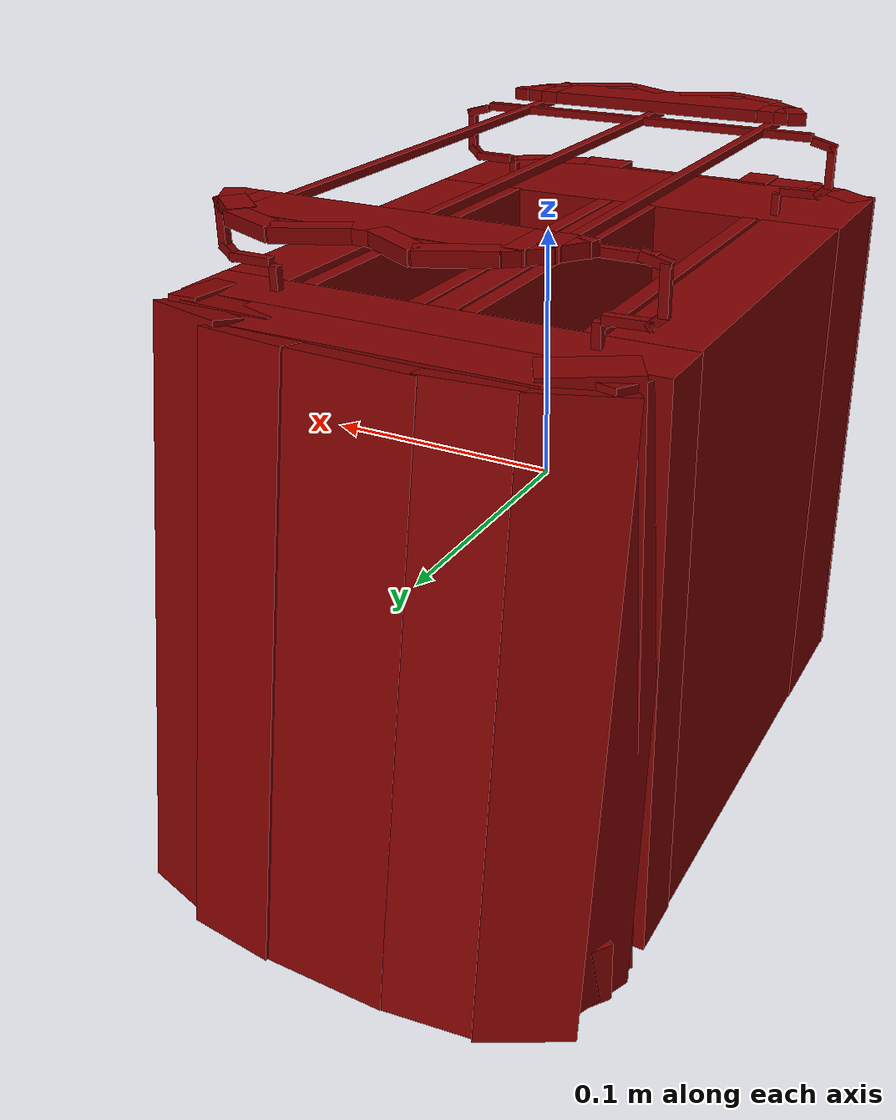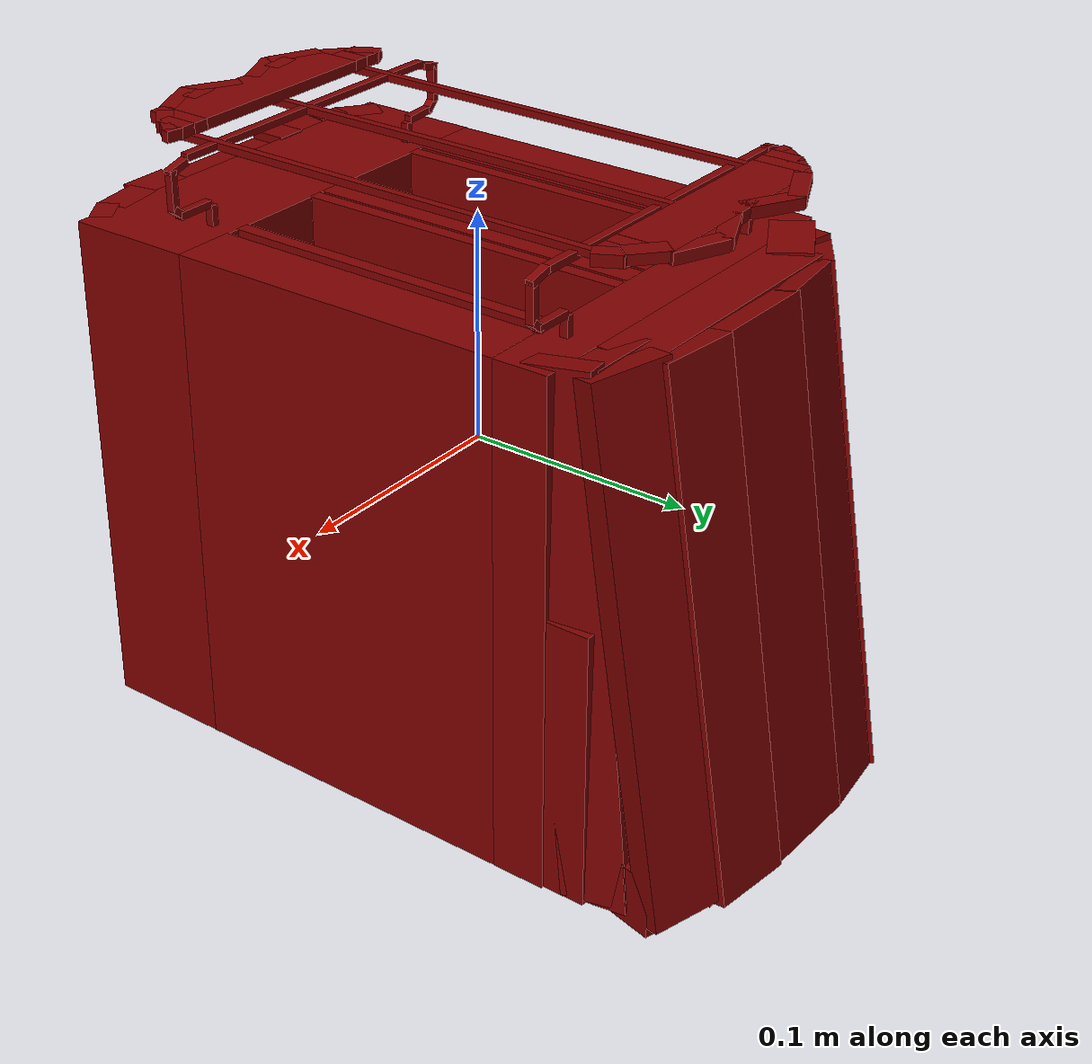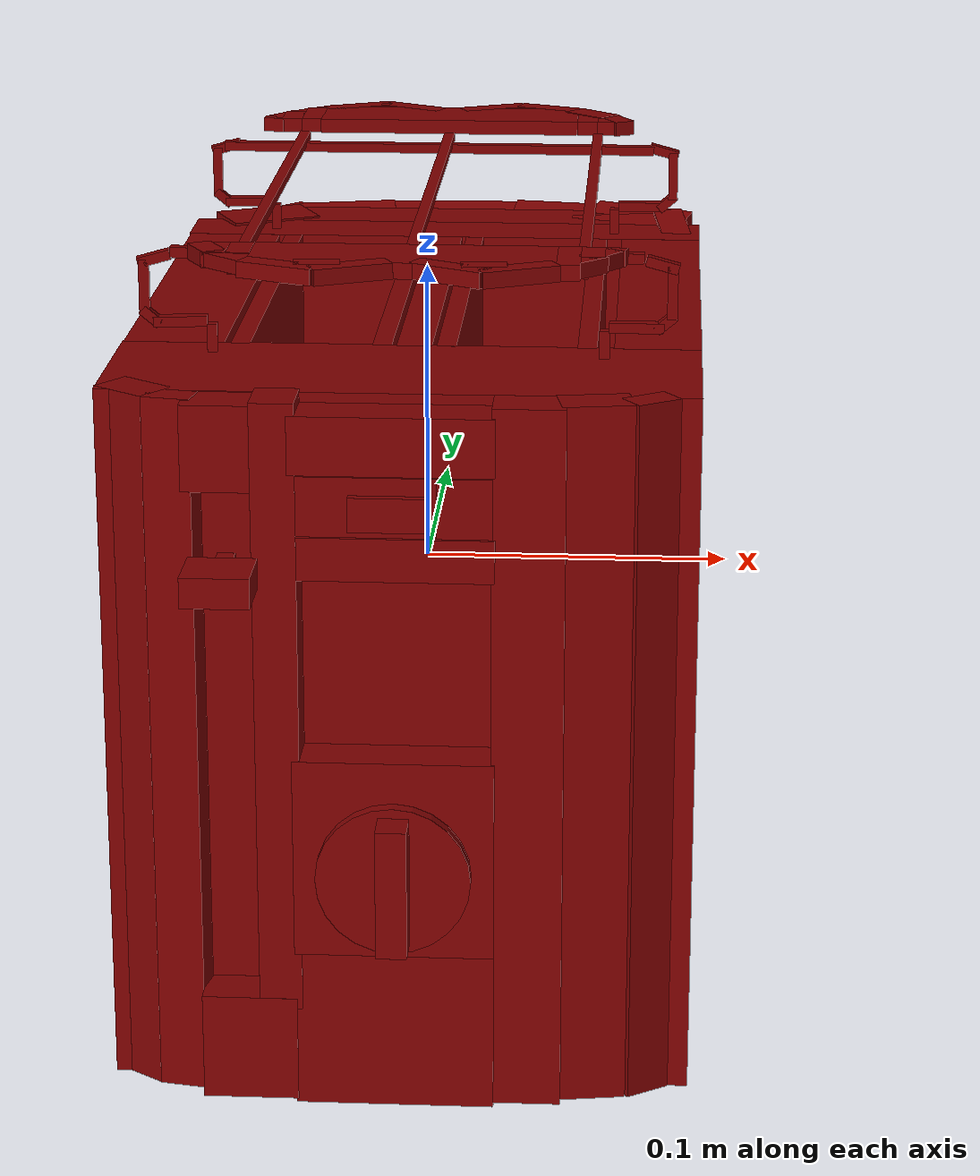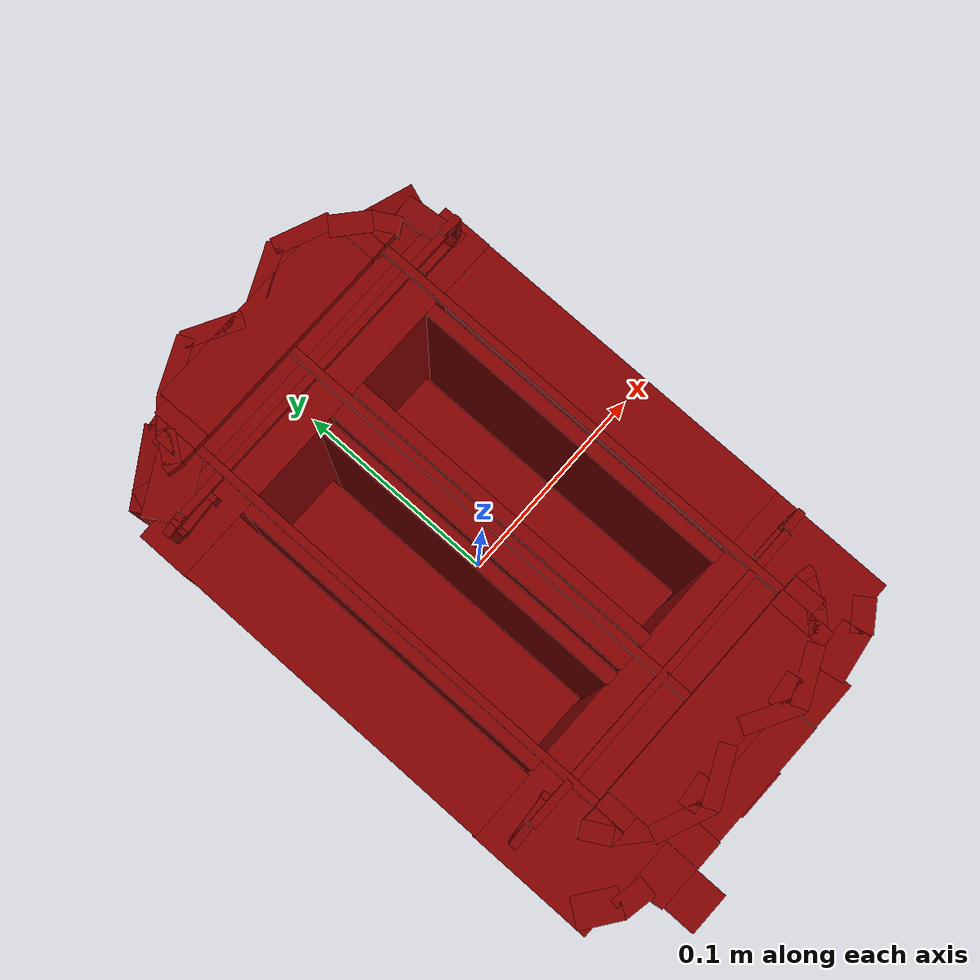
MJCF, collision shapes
<?xml version='1.0' encoding='UTF-8'?>
<mujoco model="model">
  <option timestep="0.002" gravity="0.0 0.0 -9.81"/>
  <compiler angle="radian"/>
  <asset>
    <mesh file="visuals/button_cancel.obj" name="button_cancel_vis"/>
    <mesh file="visuals/knob_doneness.obj" name="knob_doneness_vis"/>
    <mesh file="visuals/lever.obj" name="lever_vis"/>
    <mesh file="visuals/Body001.obj" name="Body001_vis"/>
    <mesh file="visuals/Body002.obj" name="Body002_vis"/>
    <texture file="visuals/T_BC001.png" name="Body001_material" type="2d"/>
    <material name="Body001_material" rgba="1 1 1 1.0" texture="Body001_material" shininess="0.141421377658844" specular="0.3103448502657381"/>
    <texture file="visuals/T_BC001.png" name="button_cancel_material" type="2d"/>
    <material name="button_cancel_material" rgba="1 1 1 1.0" texture="button_cancel_material" shininess="0.141421377658844" specular="0.3103448502657381"/>
    <texture file="visuals/T_BC001.png" name="knob_doneness_material" type="2d"/>
    <material name="knob_doneness_material" rgba="1 1 1 1.0" texture="knob_doneness_material" shininess="0.141421377658844" specular="0.3103448502657381"/>
    <texture file="visuals/T_BC001.png" name="lever_material" type="2d"/>
    <material name="lever_material" rgba="1 1 1 1.0" texture="lever_material" shininess="0.141421377658844" specular="0.3103448502657381"/>
    <texture file="visuals/T_BC001.png" name="Body002_material" type="2d"/>
    <material name="Body002_material" rgba="1 1 1 1.0" texture="Body002_material" shininess="0.141421377658844" specular="0.3103448502657381"/>
  </asset>
  <default>
    <default class="visual">
      <geom conaffinity="0" contype="0" group="1" type="mesh"/>
    </default>
    <default class="collision">
      <geom group="0" rgba="0.5 0 0 0.5" density="1.0" solref="0.004 1" solimp="0.998 0.998 0.001"/>
    </default>
    <default class="spawn">
      <geom group="0" rgba="1 1 1 0.5" contype="0" conaffinity="0"/>
      <site group="0" rgba="1 1 1 0.5"/>
    </default>
    <default class="region">
      <geom group="1" conaffinity="0" contype="0" rgba="0 1 0 0" mass="0"/>
    </default>
  </default>
  <worldbody>
    <body>
      <body name="object">
        <geom mesh="Body001_vis" type="mesh" solimp="0.998 0.998 0.001" solref="0.001 1" friction="0.95 0.3 0.1" class="visual" material="Body001_material"/>
        <geom type="box" pos="0.07625635713338852 -0.00012785382568836212 -0.018579840660095215" size="0.013460882008075714 0.07558245956897736 0.11121832579374313" quat="1.0 0.0 0.0 0.0" class="collision"/>
        <geom type="box" pos="0.00088832201436162 -0.11155819147825241 0.12759704887866974" size="0.04550285264849663 0.012207213789224625 0.0024140244349837303" quat="1.0 0.0 0.0 0.0" class="collision"/>
        <geom type="box" pos="6.33587478660047e-05 0.08737225085496902 -0.018579840660095215" size="0.08984652906656265 0.011873370967805386 0.11121884733438492" quat="1.0 0.0 0.0 0.0" class="collision"/>
        <geom type="box" pos="-0.07352388650178909 -0.00012785382568836212 -0.018579840660095215" size="0.015649346634745598 0.07558272033929825 0.11121884733438492" quat="1.0 0.0 0.0 0.0" class="collision"/>
        <geom type="box" pos="0.00015739095397293568 -0.00012785382568836212 -0.1143738403916359" size="0.041732896119356155 0.07558272033929825 0.015424847602844238" quat="1.0 0.0 0.0 0.0" class="collision"/>
        <geom type="box" pos="0.0395720973610878 -0.13860392570495605 -0.018579840660095215" size="0.01080775074660778 0.007547931279987097 0.11121652275323868" quat="1.0 0.0 0.0 0.0" class="collision"/>
        <geom type="box" pos="-0.045072488486766815 -0.13840648531913757 -0.11286623775959015" size="0.014666675589978695 0.008579140529036522 0.016932453960180283" quat="1.0 0.0 0.0 0.0" class="collision"/>
        <geom type="box" pos="-0.0005787424161098897 -0.138384610414505 0.08067131042480469" size="0.030381081625819206 0.00855683721601963 0.008924458175897598" quat="1.0 0.0 0.0 0.0" class="collision"/>
        <geom type="box" pos="-0.0005787423579022288 -0.13884201645851135 -0.1046939492225647" size="0.030382825061678886 0.007743623107671738 0.026408197358250618" quat="1.0 0.0 0.0 0.0" class="collision"/>
        <geom type="box" pos="0.0011345604434609413 -0.00012785382568836212 -0.018579840660095215" size="0.005468219053000212 0.07558751851320267 0.11122364550828934" quat="1.0 0.0 0.0 0.0" class="collision"/>
        <geom type="box" pos="3.0108087230473757e-05 -0.1030886322259903 -0.018579840660095215" size="0.08960356563329697 0.02828243561089039 0.11121264100074768" quat="1.0 0.0 0.0 0.0" class="collision"/>
        <geom type="box" pos="0.0009522776817902923 -0.005598044954240322 0.12401928007602692" size="0.0017291087424382567 0.10349177569150925 0.0015544283669441938" quat="1.0 0.0 0.0 0.0" class="collision"/>
        <geom type="box" pos="-0.05038544163107872 -0.005598044954240322 0.12401928007602692" size="0.001729109906591475 0.10349177569150925 0.0015544283669441938" quat="1.0 0.0 0.0 0.0" class="collision"/>
        <geom type="box" pos="0.05354681983590126 -0.005598044954240322 0.12401928007602692" size="0.001729115261696279 0.10349177569150925 0.0015544283669441938" quat="1.0 0.0 0.0 0.0" class="collision"/>
        <geom type="box" pos="-0.0021582453045994043 0.08499748259782791 0.12228640913963318" size="0.07560938596725464 0.001729303621686995 0.0015544909983873367" quat="1.0 0.0 0.0 0.0" class="collision"/>
        <geom type="box" pos="0.08034513890743256 0.08566483110189438 0.11339043825864792" size="0.001554414862766862 0.0017291834810748696 0.008288615383207798" quat="1.0 0.0 0.0 0.0" class="collision"/>
        <geom type="box" pos="0.0695924237370491 0.0857296735048294 0.10224182903766632" size="0.008288619108498096 0.0017291851108893752 0.0015544130001217127" quat="1.0 0.0 0.0 0.0" class="collision"/>
        <geom type="box" pos="0.05993738770484924 0.08574510365724564 0.09693772345781326" size="0.0015544728375971317 0.0017292768461629748 0.004351865034550428" quat="1.0 0.0 0.0 0.0" class="collision"/>
        <geom type="box" pos="0.0771556943655014 0.08566483110189438 0.12181064486503601" size="0.001729181269183755 0.005066163372248411 0.0015544126508757472" quat="0.09229595214128494 0.7010574340820312 -0.7010573148727417 -0.09229602664709091" class="collision"/>
        <geom type="box" pos="0.07837152481079102 0.08572965860366821 0.10367249697446823" size="0.001729181269183755 0.0035548803862184286 0.001554418238811195" quat="0.6644629240036011 0.24184469878673553 -0.2418447732925415 -0.6644631624221802" class="collision"/>
        <geom type="box" pos="0.07837153971195221 -0.08626195043325424 0.10367248207330704" size="0.001729181269183755 0.0035548803862184286 0.0015544155612587929" quat="0.6644629240036011 0.24184469878673553 -0.2418447732925415 -0.6644631624221802" class="collision"/>
        <geom type="box" pos="0.0771557092666626 -0.08632677793502808 0.12181062996387482" size="0.001729181269183755 0.005066165700554848 0.0015544126508757472" quat="0.09229595214128494 0.7010574340820312 -0.7010573148727417 -0.09229602664709091" class="collision"/>
        <geom type="box" pos="0.05993739888072014 -0.08624650537967682 0.09693770855665207" size="0.0015544674824923277 0.0017292675329372287 0.004351865034550428" quat="1.0 0.0 0.0 0.0" class="collision"/>
        <geom type="box" pos="0.0695924386382103 -0.08626193553209305 0.10224181413650513" size="0.008288617245852947 0.0017291851108893752 0.0015544239431619644" quat="1.0 0.0 0.0 0.0" class="collision"/>
        <geom type="box" pos="0.08034515380859375 -0.08632677793502808 0.11339042335748672" size="0.001554414862766862 0.0017291834810748696 0.008288615383207798" quat="1.0 0.0 0.0 0.0" class="collision"/>
        <geom type="box" pos="-0.08042479306459427 -0.08713598549365997 0.11339042335748672" size="0.001729181269183755 0.00828862190246582 0.001554418122395873" quat="0.47771456837654114 0.4777144491672516 0.5213338136672974 0.521333634853363" class="collision"/>
        <geom type="box" pos="-0.06970734149217606 -0.08626341819763184 0.10224181413650513" size="0.001729181269183755 0.00828862190246582 0.0015544126508757472" quat="0.6755902767181396 1.6573051198065514e-07 6.911207606208336e-08 0.7372772693634033" class="collision"/>
        <geom type="box" pos="-0.06008770316839218 -0.08543729782104492 0.09693770855665207" size="0.001729181269183755 0.004351858515292406 0.001554418122395873" quat="0.4777144491672516 -0.4777143895626068 -0.5213338732719421 0.5213337540626526" class="collision"/>
        <geom type="box" pos="-0.0772474855184555 -0.08685800433158875 0.12181062996387482" size="0.001729181269183755 0.005066166631877422 0.0015544126508757472" quat="0.08818227052688599 0.6698103547096252 0.7309699058532715 0.0962340235710144" class="collision"/>
        <geom type="box" pos="-0.07845304161310196 -0.08702855557203293 0.10367248207330704" size="0.001729181269183755 0.0035548803862184286 0.0015544176567345858" quat="0.6348472237586975 0.23106549680233002 0.25216373801231384 0.6928139925003052" class="collision"/>
        <geom type="box" pos="-0.0002545728057157248 -0.08732146769762039 0.12401928007602692" size="0.07181181758642197 0.0017291909316554666 0.0015544130001217127" quat="1.0 0.0 0.0 0.0" class="collision"/>
        <geom type="box" pos="-0.08042479306459427 0.08486264944076538 0.11339042335748672" size="0.001729181269183755 0.00828862190246582 0.001554418122395873" quat="0.47771456837654114 0.4777144491672516 0.5213338136672974 0.521333634853363" class="collision"/>
        <geom type="box" pos="-0.06970734149217606 0.08573521673679352 0.10224181413650513" size="0.001729181269183755 0.008288617245852947 0.0015544126508757472" quat="0.6755902767181396 1.6573051198065514e-07 6.911207606208336e-08 0.7372772693634033" class="collision"/>
        <geom type="box" pos="-0.06008770316839218 0.08656133711338043 0.09693770855665207" size="0.001729181269183755 0.004351858515292406 0.001554418122395873" quat="0.4777144491672516 -0.4777143895626068 -0.5213338732719421 0.5213337540626526" class="collision"/>
        <geom type="box" pos="-0.0772474855184555 0.08514063060283661 0.12181062996387482" size="0.001729181269183755 0.005066162906587124 0.0015544126508757472" quat="0.08818227052688599 0.6698103547096252 0.7309699058532715 0.0962340235710144" class="collision"/>
        <geom type="box" pos="-0.07845304161310196 0.08497007936239243 0.10367248207330704" size="0.001729181269183755 0.0035548803862184286 0.0015544156776741147" quat="0.6348472237586975 0.23106549680233002 0.25216373801231384 0.6928139925003052" class="collision"/>
        <geom type="box" pos="-0.03525840863585472 -0.1383792906999588 -0.0029623513109982014" size="0.006606541108340025 0.008551761507987976 0.09632710367441177" quat="1.0 0.0 0.0 0.0" class="collision"/>
        <geom type="box" pos="-0.0512857586145401 -0.13825386762619019 0.07924631237983704" size="0.011028029024600983 0.008426348678767681 0.013121837750077248" quat="1.0 0.0 0.0 0.0" class="collision"/>
        <geom type="box" pos="-0.0005787423579022288 -0.13828134536743164 0.046115692704916" size="0.030382825061678886 0.008454016409814358 0.0066331056877970695" quat="1.0 0.0 0.0 0.0" class="collision"/>
        <geom type="box" pos="0.020912358537316322 -0.1384173333644867 0.06230780482292175" size="0.008266915567219257 0.008590007200837135 0.009143799543380737" quat="1.0 0.0 0.0 0.0" class="collision"/>
        <geom type="box" pos="-0.009236562997102737 -0.1383521556854248 0.062307801097631454" size="0.0234342273324728 0.00852483045309782 0.00914377998560667" quat="1.0 0.0 0.0 0.0" class="collision"/>
        <geom type="box" pos="-0.0005787424161098897 -0.1388709396123886 -0.04923849180340767" size="0.030382530763745308 0.008155237883329391 0.03149617090821266" quat="1.0 0.0 0.0 0.0" class="collision"/>
        <geom type="box" pos="0.049689557403326035 -0.11144767701625824 0.12759704887866974" size="0.0035432539880275726 0.012207628227770329 0.0024140961468219757" quat="1.0 0.0 0.0 0.0" class="collision"/>
        <geom type="box" pos="0.05665202811360359 -0.10646220296621323 0.12759704887866974" size="0.003543225349858403 0.006820063106715679 0.0024141205940395594" quat="1.0 0.0 0.0 0.0" class="collision"/>
        <geom type="box" pos="0.05388658493757248 -0.11490435153245926 0.12759704887866974" size="0.003543225349858403 0.006820063106715679 0.0024140961468219757" quat="0.9250949621200562 0.0 -0.0 -0.37973588705062866" class="collision"/>
        <geom type="box" pos="0.06291968375444412 -0.10204926133155823 0.12759704887866974" size="0.003543225349858403 0.0020794805604964495 0.0024140961468219757" quat="0.9948719143867493 0.0 -0.0 -0.1011427566409111" class="collision"/>
        <geom type="box" pos="0.05895443260669708 -0.10754945129156113 0.12759704887866974" size="0.0035432251170277596 0.006820063106715679 0.0024140961468219757" quat="0.9510329365730286 0.0 -0.0 -0.3090895712375641" class="collision"/>
        <geom type="box" pos="0.03504627197980881 -0.1262751668691635 0.12759704887866974" size="0.003543225349858403 0.012207720428705215 0.0024140961468219757" quat="0.8435781598091125 0.0 -0.0 -0.5370064377784729" class="collision"/>
        <geom type="box" pos="0.015429794788360596 -0.12581469118595123 0.12759704887866974" size="0.003543225349858403 0.012207720428705215 0.0024140961468219757" quat="0.5103968977928162 0.0 -0.0 -0.8599389791488647" class="collision"/>
        <geom type="box" pos="0.0252472423017025 -0.12403465807437897 0.12759704887866974" size="0.0035432251170277596 0.006820063106715679 0.0024140961468219757" quat="0.7473390698432922 0.0 -0.0 -0.6644428968429565" class="collision"/>
        <geom type="box" pos="-0.013948876410722733 -0.12581469118595123 0.12759704887866974" size="0.003543225349858403 0.012207720428705215 0.0024140961468219757" quat="0.8435781598091125 0.0 -0.0 -0.5370064377784729" class="collision"/>
        <geom type="box" pos="-0.034652598202228546 -0.1259298175573349 0.12759704887866974" size="0.003543225349858403 0.012207720428705215 0.0024140961468219757" quat="0.5552929043769836 0.0 -0.0 -0.8316548466682434" class="collision"/>
        <geom type="box" pos="-0.02374790608882904 -0.12357417494058609 0.12759704887866974" size="0.0035432251170277596 0.006820063106715679 0.0024140961468219757" quat="0.7473390698432922 0.0 -0.0 -0.6644428968429565" class="collision"/>
        <geom type="box" pos="-0.04829985275864601 -0.10635311901569366 0.12759704887866974" size="0.003543225349858403 0.006820063106715679 0.002414119429886341" quat="1.0 0.0 0.0 0.0" class="collision"/>
        <geom type="box" pos="-0.049519702792167664 -0.11495516449213028 0.12759704887866974" size="0.004441085737198591 0.008548281155526638 0.0021612581331282854" quat="0.9103667736053467 0.0 0.0 0.41380226612091064" class="collision"/>
        <geom type="box" pos="-0.058500781655311584 -0.10584858804941177 0.12759704887866974" size="0.006284430157393217 0.00368826393969357 0.0024433673825114965" quat="0.8612894415855408 0.0 -0.0 -0.5081146359443665" class="collision"/>
        <geom type="box" pos="-0.05548420175909996 -0.10637443512678146 0.12759704887866974" size="0.003543225349858403 0.0068200621753931046 0.0024140961468219757" quat="0.9997301697731018 0.0 -0.0 -0.02322978712618351" class="collision"/>
        <geom type="box" pos="0.0005964129231870174 0.10897926986217499 0.12747864425182343" size="0.045503560453653336 0.012207579798996449 0.0024140740279108286" quat="1.0 0.0 0.0 0.0" class="collision"/>
        <geom type="box" pos="-0.048128075897693634 0.10741057246923447 0.12747864425182343" size="0.003543228842318058 0.01038453634828329 0.0024140961468219757" quat="1.0 0.0 0.0 0.0" class="collision"/>
        <geom type="box" pos="-0.055167295038700104 0.1038832888007164 0.12747864425182343" size="0.0035432276781648397 0.006820064038038254 0.002414115471765399" quat="1.0 0.0 0.0 0.0" class="collision"/>
        <geom type="box" pos="-0.04940872639417648 0.11363013088703156 0.12747864425182343" size="0.003916915971785784 0.007539349142462015 0.0022580712102353573" quat="0.40163373947143555 0.0 0.0 0.9158003926277161" class="collision"/>
        <geom type="box" pos="-0.061434950679540634 0.0994703471660614 0.12747864425182343" size="0.003543225349858403 0.0020794805604964495 0.0024140961468219757" quat="0.10114292800426483 0.0 0.0 0.9948719143867493" class="collision"/>
        <geom type="box" pos="-0.057469699531793594 0.1049705371260643 0.12747864425182343" size="0.0035432251170277596 0.006820063106715679 0.0024140961468219757" quat="0.3090897500514984 0.0 0.0 0.9510328769683838" class="collision"/>
        <geom type="box" pos="-0.03356153890490532 0.12369624525308609 0.12747864425182343" size="0.003543225349858403 0.012207720428705215 0.0024140961468219757" quat="0.5370064973831177 0.0 0.0 0.8435781002044678" class="collision"/>
        <geom type="box" pos="-0.013945057988166809 0.12323576956987381 0.12747864425182343" size="0.0035432251170277596 0.012207720428705215 0.0024140961468219757" quat="0.8599390387535095 0.0 0.0 0.5103967785835266" class="collision"/>
        <geom type="box" pos="-0.023762505501508713 0.12145573645830154 0.12733027338981628" size="0.0035432251170277596 0.006820063106715679 0.0024140961468219757" quat="0.6644429564476013 0.0 0.0 0.7473390102386475" class="collision"/>
        <geom type="box" pos="0.015433616004884243 0.12323576956987381 0.12747864425182343" size="0.003543225349858403 0.012207720428705215 0.0024140961468219757" quat="0.5370064973831177 0.0 0.0 0.8435781002044678" class="collision"/>
        <geom type="box" pos="0.036137331277132034 0.12335089594125748 0.12747864425182343" size="0.003543225349858403 0.012207720428705215 0.0024140961468219757" quat="0.8316548466682434 0.0 0.0 0.5552929043769836" class="collision"/>
        <geom type="box" pos="0.025232642889022827 0.12099525332450867 0.12733027338981628" size="0.0035432251170277596 0.006820063106715679 0.0024140961468219757" quat="0.6644429564476013 0.0 0.0 0.7473390102386475" class="collision"/>
        <geom type="box" pos="0.0497845858335495 0.10377418994903564 0.12747864425182343" size="0.0035432276781648397 0.006820064038038254 0.002414114074781537" quat="1.0 0.0 0.0 0.0" class="collision"/>
        <geom type="box" pos="0.05100443586707115 0.11237623542547226 0.12794941663742065" size="0.004441085737198591 0.008548281155526638 0.0021612581331282854" quat="0.41380226612091064 0.0 -0.0 -0.9103667736053467" class="collision"/>
        <geom type="box" pos="0.05998551473021507 0.10326965898275375 0.12747864425182343" size="0.006284430157393217 0.00368826393969357 0.0024433673825114965" quat="0.5081146359443665 0.0 0.0 0.8612894415855408" class="collision"/>
        <geom type="box" pos="0.05696893483400345 0.10379550606012344 0.12747864425182343" size="0.003543225349858403 0.006820063106715679 0.0024140961468219757" quat="0.023229969665408134 0.0 0.0 0.9997301697731018" class="collision"/>
        <geom type="box" pos="0.05858074501156807 -0.13495691120624542 -0.018579840660095215" size="0.01080799289047718 0.006625041831284761 0.11121884733438492" quat="0.9966905117034912 0.0 0.0 0.08128968626260757" class="collision"/>
        <geom type="box" pos="0.0747159868478775 -0.131972998380661 -0.018579840660095215" size="0.00738156121224165 0.004729794804006815 0.11121884733438492" quat="0.956101655960083 0.0 0.0 0.2930351197719574" class="collision"/>
        <geom type="box" pos="-0.07831528782844543 -0.12788745760917664 -0.018579840660095215" size="0.009443521499633789 0.006625041831284761 0.11121884733438492" quat="0.952153205871582 0.0 -0.0 -0.30562111735343933" class="collision"/>
        <geom type="box" pos="-0.06629563868045807 -0.13566935062408447 -0.018579840660095215" size="0.007381560280919075 0.004729794804006815 0.11121884733438492" quat="0.9958137273788452 0.0 -0.0 -0.09140605479478836" class="collision"/>
        <geom type="box" pos="0.0005502346903085709 0.10983039438724518 -0.018579840660095215" size="0.059643153101205826 0.011873284354805946 0.11121816188097" quat="1.0 0.0 0.0 0.0" class="collision"/>
        <geom type="box" pos="0.0008918401435948908 0.14489389955997467 -0.017163148149847984" size="0.023797927424311638 0.005012699868530035 0.11121886223554611" quat="0.9965649247169495 0.08246416598558426 -0.005023703910410404 -0.005724199116230011" class="collision"/>
        <geom type="box" pos="-0.03877222537994385 0.14360411465168 -0.017282359302043915" size="0.017651716247200966 0.004196143709123135 0.11121886968612671" quat="0.9943920373916626 0.08288134634494781 -0.004864958114922047 0.0655091404914856" class="collision"/>
        <geom type="box" pos="-0.06750383973121643 0.13292372226715088 -0.019039876759052277" size="0.017651716247200966 0.00588522432371974 0.11121886223554611" quat="0.9567350745201111 0.07987119257450104 -0.02266186662018299 0.2788638472557068" class="collision"/>
        <geom type="box" pos="-0.08055631816387177 0.11285140365362167 -0.0192590169608593" size="0.01464123371988535 0.0040429821237921715 0.11121886968612671" quat="0.8164798021316528 0.053202804177999496 -0.032888736575841904 0.5739760994911194" class="collision"/>
        <geom type="box" pos="0.041694946587085724 0.14266666769981384 -0.016940981149673462" size="0.017651716247200966 0.00588522432371974 0.11121886968612671" quat="0.9946147203445435 0.08319374173879623 -0.00017087864398490638 -0.06180912256240845" class="collision"/>
        <geom type="box" pos="0.07025143504142761 0.1339177042245865 -0.01600014977157116" size="0.017651716247200966 0.005885224789381027 0.11121886968612671" quat="0.9847123026847839 0.08285678178071976 0.007482476998120546 -0.1530374139547348" class="collision"/>
        <geom type="box" pos="0.08158773183822632 0.10967597365379333 -0.01662706397473812" size="0.01453572977334261 0.00509297801181674 0.11121886968612671" quat="0.7479175329208374 0.04382636025547981 0.03129924088716507 -0.6616033315658569" class="collision"/>
        <geom type="box" pos="0.06611568480730057 0.10939447581768036 -0.018483377993106842" size="0.014535728842020035 0.017348647117614746 0.11121886968612671" quat="0.718610942363739 0.05031517520546913 0.024392085149884224 -0.6931606531143188" class="collision"/>
        <geom type="box" pos="-0.06836403906345367 0.10719054192304611 -0.017401019111275673" size="0.01622443087399006 0.009179049171507359 0.11121886968612671" quat="0.9683212637901306 0.017481839284300804 0.00994997937232256 0.24889615178108215" class="collision"/>
        <geom type="box" pos="-0.0006787058664485812 0.13837727904319763 -0.11804741621017456" size="0.05964358150959015 0.01867489516735077 0.012905352748930454" quat="1.0 0.0 0.0 0.0" class="collision"/>
        <geom type="box" pos="0.06798996776342392 0.14162804186344147 -0.11804741621017456" size="0.010031410492956638 0.018674764782190323 0.012905276380479336" quat="0.6182823181152344 0.0 -0.0 -0.785956084728241" class="collision"/>
        <geom type="box" pos="-0.06876785308122635 0.13275425136089325 -0.11804741621017456" size="0.010031410492956638 0.018674764782190323 0.012905276380479336" quat="0.9473262429237366 0.0 -0.0 -0.3202701807022095" class="collision"/>
        <geom type="box" pos="0.0715484544634819 0.10796735435724258 -0.0680193230509758" size="0.01774711161851883 0.01016092300415039 0.06114324927330017" quat="1.0 0.0 0.0 0.0" class="collision"/>
        <body name="button_cancel">
          <joint axis="0.0 1.0 0.0" pos="-0.0015356737421825528 -0.14885348081588745 0.06103966757655144" limited="true" name="button_cancel_joint" range="0.0 0.003" type="slide" damping="1" frictionloss="1" armature=".01" stiffness="0.05"/>
          <geom mesh="button_cancel_vis" type="mesh" solimp="0.998 0.998 0.001" solref="0.001 1" friction="0.95 0.3 0.1" class="visual" material="button_cancel_material"/>
          <geom class="collision" type="box" pos="-0.0013609036104753613 -0.14986763894557953 0.061323098838329315" size="0.01158258505165577 0.0013246641028672457 0.005231224000453949" quat="1.0 0.0 0.0 0.0" name="button_cancel_main"/>
        </body>
        <body name="knob_doneness">
          <joint axis="0.0 1.0 0.0" pos="0.0001651179773034528 -0.14988106489181519 -0.05366307869553566" limited="true" name="knob_doneness_joint" range="0.0 5.759586531581287" type="hinge" damping="0.05" frictionloss="0.1" armature="0.001"/>
          <geom mesh="knob_doneness_vis" type="mesh" solimp="0.998 0.998 0.001" solref="0.001 1" friction="0.95 0.3 0.1" class="visual" material="knob_doneness_material"/>
          <geom type="cylinder" pos="-0.00035743697662837803 -0.15020295977592468 -0.05358259752392769" size="0.02352958545088768 0.002197747817263007" quat="0.7071068286895752 0.7071067690849304 0.0 0.0" class="collision" density="0.001"/>
          <geom class="collision" type="box" pos="1.6962294466793537e-06 -0.15773704648017883 -0.05341293290257454" size="0.004684708081185818 0.005968424491584301 0.020361721515655518" quat="1.0 0.0 0.0 0.0" name="knob_doneness_main" density="0.001"/>
        </body>
        <body name="lever">
          <joint axis="0.0 0.0 -1.0" pos="-0.0500607043504715 -0.15344667434692383 0.04236011579632759" limited="true" name="lever_joint" range="0.0 0.06" type="slide" damping="1" frictionloss="1" armature=".01" stiffness="1" springref="-0.8"/>
          <geom class="region" name="reg_slotL" type="box" pos="-0.03017637226730585 0.00023833662271499634 0.09284894354641438" size="0.012472458951175214 0.07091716474294663 0.07600007562339306"/>
          <geom class="region" name="reg_slotR" type="box" pos="0.03373489901423454 0.00023833662271499634 0.09284894354641438" size="0.011565120726823808 0.07091716474294663 0.07600007562339306"/>
          <geom mesh="lever_vis" type="mesh" solimp="0.998 0.998 0.001" solref="0.001 1" friction="0.95 0.3 0.1" class="visual" material="lever_material"/>
          <geom class="collision" type="box" pos="-0.02980538085103035 -0.00012785755097866058 0.012733090668916702" size="0.014000000432133675 0.07249999046325684 0.00041183471330441535" quat="1.0 0.0 0.0 0.0" name="slotL_floor"/>
          <geom class="collision" type="box" pos="0.03253265842795372 -0.00012785568833351135 0.012733090668916702" size="0.0139999995008111 0.07249999046325684 0.0004118375072721392" quat="1.0 0.0 0.0 0.0" name="slotR_floor"/>
          <geom class="collision" type="box" pos="-0.0498691201210022 -0.15945100784301758 0.042542289942502975" size="0.010252019390463829 0.009677235037088394 0.004635234363377094" quat="1.0 0.0 0.0 0.0" name="lever_handle"/>
          <geom type="box" pos="-0.05020032078027725 -0.14365297555923462 0.042542289942502975" size="0.002658987184986472 0.005694434978067875 0.0022419183515012264" quat="1.0 0.0 0.0 0.0" class="collision"/>
        </body>
        <body name="Body002">
          <geom mesh="Body002_vis" type="mesh" solimp="0.998 0.998 0.001" solref="0.001 1" friction="0.95 0.3 0.1" class="visual" material="Body002_material"/>
          <geom type="box" pos="-0.0528121143579483 -0.00012785382568836212 -0.018579840660095215" size="0.0029905959963798523 0.075589120388031 0.11122525483369827" quat="1.0 0.0 0.0 0.0" class="collision"/>
          <geom type="box" pos="0.054499633610248566 -0.00012785382568836212 -0.018579840660095215" size="0.0029905959963798523 0.0755889043211937 0.11122503131628036" quat="1.0 0.0 0.0 0.0" class="collision"/>
          <geom type="box" pos="-0.008871513418853283 -0.00012785382568836212 -0.018579840660095215" size="0.0029905959963798523 0.07558800280094147 0.11122412979602814" quat="1.0 0.0 0.0 0.0" class="collision"/>
          <geom type="box" pos="0.011075875721871853 -0.00012785382568836212 -0.018579840660095215" size="0.0029905959963798523 0.07558796554803848 0.11122409999370575" quat="1.0 0.0 0.0 0.0" class="collision"/>
        </body>
        <geom class="region" name="reg_main" type="box" pos="1.862645149230957e-09 0.011066019535064697 0.0" size="0.09100001847743988 0.15912450647354126 0.1311838606595993"/>
      </body>
    </body>
  </worldbody>
  <actuator>
    <motor name="button_cancel_joint_actuator" joint="button_cancel_joint" gear="0.5"/>
    <motor name="knob_doneness_joint_actuator" joint="knob_doneness_joint" gear="0.5"/>
    <motor name="lever_joint_actuator" joint="lever_joint" gear="0.5"/>
  </actuator>
</mujoco>
